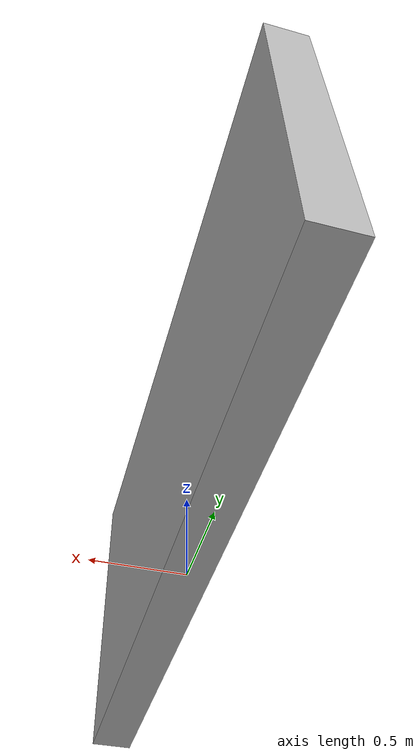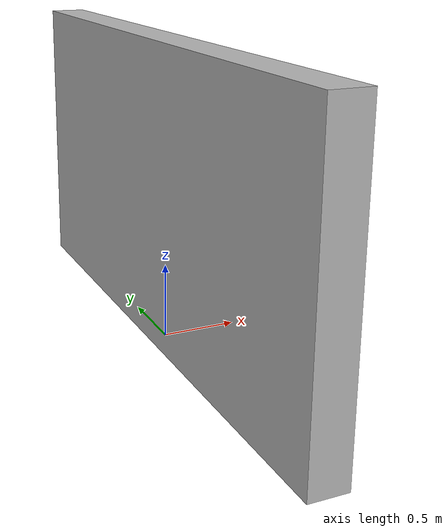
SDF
<?xml version='1.0'?>
<sdf version='1.4'>
  <model name="brick_wall_3">
    <static>true</static>
    <pose>0 0 0 0 0 0</pose>

    <link name="brick _bar_3">
      <visual name="brick_wall_3">
        <geometry>
          <mesh>
            <uri>model://brick_wall_3/brick_wall_3.dae</uri>
          </mesh>
        </geometry>
      </visual>
      <collision name="brick_wall_3">
        <geometry>
          <mesh>
            <uri>model://brick_wall_3/brick_wall_3.dae</uri>
          </mesh>
        </geometry>
      </collision>
    </link>

  </model>
</sdf>
